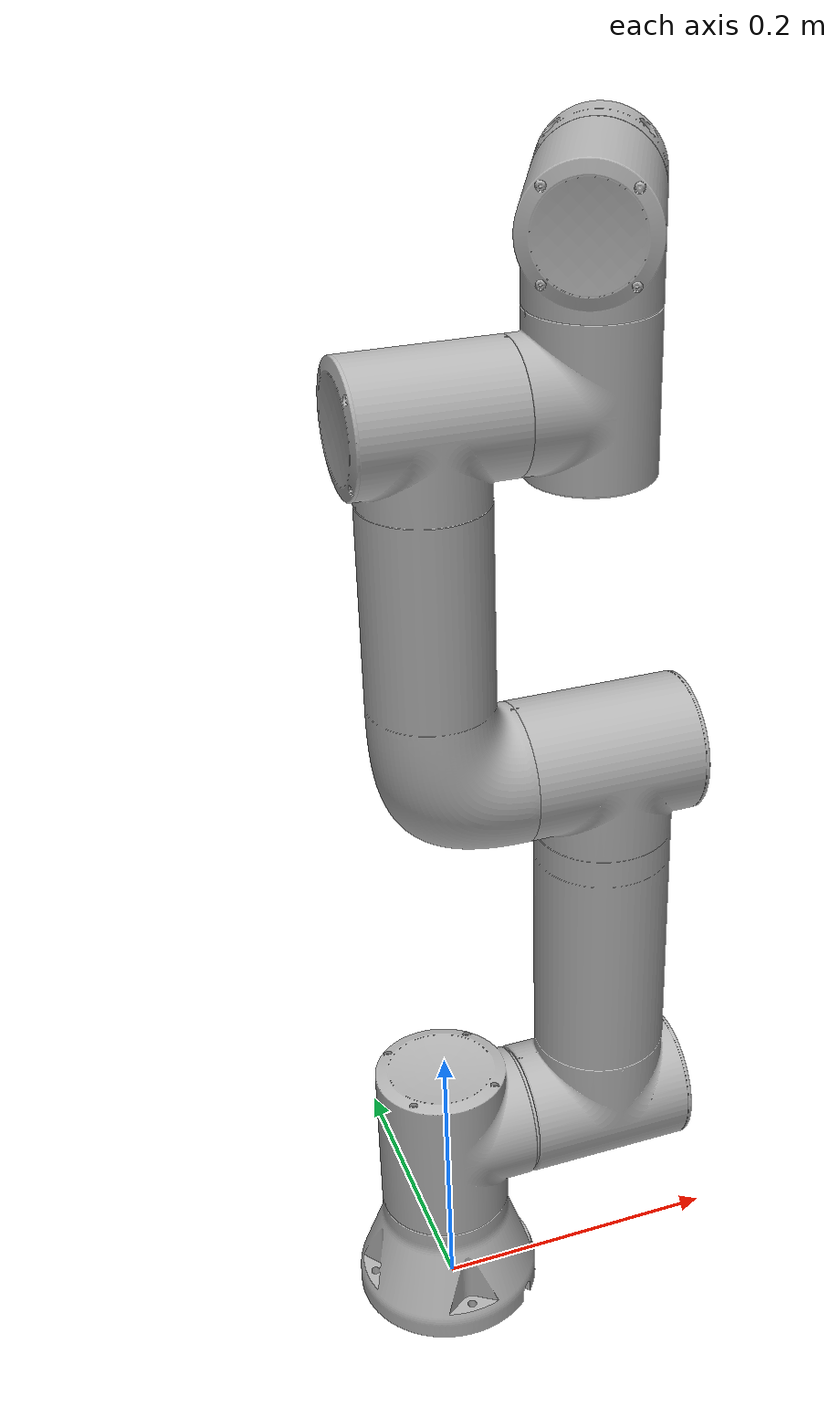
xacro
<?xml version="1.0"?>
<robot xmlns:xacro="http://www.ros.org/wiki/xacro" name="r1d1_arm">
    <xacro:arg name="initial_positions_file" default="initial_positions.yaml" />

    <!-- Import r1d1_arm urdf file -->
    <xacro:include filename="$(find r1d1_arm_description)/urdf/r1d1_arm.xacro" />

    <!-- Import control_xacro -->
    <xacro:include filename="r1d1_arm.ros2_control.xacro" />

    <xacro:r1d1_arm_ros2_control name="FakeSystem" initial_positions_file="$(arg initial_positions_file)"/>

</robot>

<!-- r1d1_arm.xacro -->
<robot name="r1d1_arm" xmlns:xacro="http://www.ros.org/wiki/xacro">

<xacro:include filename="$(find r1d1_arm_description)/urdf/materials.xacro" />
<xacro:include filename="$(find r1d1_arm_description)/urdf/r1d1_arm.trans" />
<xacro:include filename="$(find r1d1_arm_description)/urdf/r1d1_arm.gazebo" />
<link name="base_link">
  <inertial>
    <origin xyz="-0.0032892405595757253 0.0008054821122333955 0.0326965395387193" rpy="0 0 0"/>
    <mass value="0.7839307650159778"/>
    <inertia ixx="0.001385" iyy="0.001385" izz="0.001977" ixy="-1.1e-05" iyz="1.1e-05" ixz="-1e-05"/>
  </inertial>
  <visual>
    <origin xyz="0 0 0" rpy="0 0 0"/>
    <geometry>
      <mesh filename="file://$(find r1d1_arm_description)/meshes/base_link.stl" scale="0.001 0.001 0.001"/>
    </geometry>
    <material name="silver"/>
  </visual>
  <collision>
    <origin xyz="0 0 0" rpy="0 0 0"/>
    <geometry>
      <mesh filename="file://$(find r1d1_arm_description)/meshes/base_link.stl" scale="0.001 0.001 0.001"/>
    </geometry>
  </collision>
</link>

<link name="shoulder_Link_1">
  <inertial>
    <origin xyz="0.002444202112778739 4.606711100011167e-06 0.05859659888105938" rpy="0 0 0"/>
    <mass value="2.0994829095204555"/>
    <inertia ixx="0.003406" iyy="0.003487" izz="0.002292" ixy="-0.0" iyz="-0.0" ixz="-3.6e-05"/>
  </inertial>
  <visual>
    <origin xyz="0.002838 -0.000315 -0.076169" rpy="0 0 0"/>
    <geometry>
      <mesh filename="file://$(find r1d1_arm_description)/meshes/shoulder_Link_1.stl" scale="0.001 0.001 0.001"/>
    </geometry>
    <material name="silver"/>
  </visual>
  <collision>
    <origin xyz="0.002838 -0.000315 -0.076169" rpy="0 0 0"/>
    <geometry>
      <mesh filename="file://$(find r1d1_arm_description)/meshes/shoulder_Link_1.stl" scale="0.001 0.001 0.001"/>
    </geometry>
  </collision>
</link>

<link name="upperarm_Link_1">
  <inertial>
    <origin xyz="0.06170357890518546 0.00011276439712407571 0.14000144050923868" rpy="0 0 0"/>
    <mass value="7.489930890438433"/>
    <inertia ixx="0.097327" iyy="0.099971" izz="0.010418" ixy="-5e-06" iyz="-0.0" ixz="0.0"/>
  </inertial>
  <visual>
    <origin xyz="-0.049874 -0.000411 -0.140169" rpy="0 0 0"/>
    <geometry>
      <mesh filename="file://$(find r1d1_arm_description)/meshes/upperarm_Link_1.stl" scale="0.001 0.001 0.001"/>
    </geometry>
    <material name="silver"/>
  </visual>
  <collision>
    <origin xyz="-0.049874 -0.000411 -0.140169" rpy="0 0 0"/>
    <geometry>
      <mesh filename="file://$(find r1d1_arm_description)/meshes/upperarm_Link_1.stl" scale="0.001 0.001 0.001"/>
    </geometry>
  </collision>
</link>

<link name="wrist1_Link_1">
  <inertial>
    <origin xyz="0.041221030830676735 7.524687937618738e-05 0.004360834037367312" rpy="0 0 0"/>
    <mass value="1.5661727934578047"/>
    <inertia ixx="0.001986" iyy="0.00209" izz="0.001431" ixy="-0.0" iyz="-0.0" ixz="-2.6e-05"/>
  </inertial>
  <visual>
    <origin xyz="-0.056874 -0.000424 -0.660179" rpy="0 0 0"/>
    <geometry>
      <mesh filename="file://$(find r1d1_arm_description)/meshes/wrist1_Link_1.stl" scale="0.001 0.001 0.001"/>
    </geometry>
    <material name="silver"/>
  </visual>
  <collision>
    <origin xyz="-0.056874 -0.000424 -0.660179" rpy="0 0 0"/>
    <geometry>
      <mesh filename="file://$(find r1d1_arm_description)/meshes/wrist1_Link_1.stl" scale="0.001 0.001 0.001"/>
    </geometry>
  </collision>
</link>

<link name="wrist2_Link_1">
  <inertial>
    <origin xyz="0.0018357408011129284 0.003955631683063558 0.041220918552474894" rpy="0 0 0"/>
    <mass value="1.5661775922744299"/>
    <inertia ixx="0.001973" iyy="0.001548" izz="0.001986" ixy="-0.000251" iyz="-2.3e-05" ixz="-1.1e-05"/>
  </inertial>
  <visual>
    <origin xyz="-0.101874 -0.000506 -0.717179" rpy="0 0 0"/>
    <geometry>
      <mesh filename="file://$(find r1d1_arm_description)/meshes/wrist2_Link_1.stl" scale="0.001 0.001 0.001"/>
    </geometry>
    <material name="silver"/>
  </visual>
  <collision>
    <origin xyz="-0.101874 -0.000506 -0.717179" rpy="0 0 0"/>
    <geometry>
      <mesh filename="file://$(find r1d1_arm_description)/meshes/wrist2_Link_1.stl" scale="0.001 0.001 0.001"/>
    </geometry>
  </collision>
</link>

<link name="wrist3_Link_1">
  <inertial>
    <origin xyz="0.008299147728004164 0.0177772418279463 -6.263837265285677e-05" rpy="0 0 0"/>
    <mass value="1.5664115132263388"/>
    <inertia ixx="0.000909" iyy="0.001169" izz="0.000839" ixy="0.000153" iyz="-1e-06" ixz="1e-06"/>
  </inertial>
  <visual>
    <origin xyz="-0.125869 -0.052209 -0.762179" rpy="0 0 0"/>
    <geometry>
      <mesh filename="file://$(find r1d1_arm_description)/meshes/wrist3_Link_1.stl" scale="0.001 0.001 0.001"/>
    </geometry>
    <material name="silver"/>
  </visual>
  <collision>
    <origin xyz="-0.125869 -0.052209 -0.762179" rpy="0 0 0"/>
    <geometry>
      <mesh filename="file://$(find r1d1_arm_description)/meshes/wrist3_Link_1.stl" scale="0.001 0.001 0.001"/>
    </geometry>
  </collision>
</link>

<link name="forearm_Link_1">
  <inertial>
    <origin xyz="-0.045494979236257185 -8.250912195243961e-05 0.1282988422809649" rpy="0 0 0"/>
    <mass value="4.877533073312037"/>
    <inertia ixx="0.044713" iyy="0.045622" izz="0.005035" ixy="-2e-06" iyz="3e-06" ixz="0.00147"/>
  </inertial>
  <visual>
    <origin xyz="-0.049874 -0.000411 -0.420169" rpy="0 0 0"/>
    <geometry>
      <mesh filename="file://$(find r1d1_arm_description)/meshes/forearm_Link_1.stl" scale="0.001 0.001 0.001"/>
    </geometry>
    <material name="silver"/>
  </visual>
  <collision>
    <origin xyz="-0.049874 -0.000411 -0.420169" rpy="0 0 0"/>
    <geometry>
      <mesh filename="file://$(find r1d1_arm_description)/meshes/forearm_Link_1.stl" scale="0.001 0.001 0.001"/>
    </geometry>
  </collision>
</link>

<joint name="Revolute 1" type="revolute">
  <origin xyz="-0.002838 0.000315 0.076169" rpy="0 0 0"/>
  <parent link="base_link"/>
  <child link="shoulder_Link_1"/>
  <axis xyz="-0.0 0.0 1.0"/>
  <limit upper="3.054326" lower="-3.054326" effort="100" velocity="100"/>
</joint>

<joint name="Revolute 2" type="revolute">
  <origin xyz="0.052712 9.6e-05 0.064" rpy="0 0 0"/>
  <parent link="shoulder_Link_1"/>
  <child link="upperarm_Link_1"/>
  <axis xyz="0.999998 0.001823 0.0"/>
  <limit upper="3.054326" lower="-3.054326" effort="100" velocity="100"/>
</joint>

<joint name="Revolute 4" type="revolute">
  <origin xyz="0.007 1.3e-05 0.24001" rpy="0 0 0"/>
  <parent link="forearm_Link_1"/>
  <child link="wrist1_Link_1"/>
  <axis xyz="0.999998 0.001823 0.0"/>
  <limit upper="3.054326" lower="-3.054326" effort="100" velocity="100"/>
</joint>

<joint name="Revolute 5" type="revolute">
  <origin xyz="0.045 8.2e-05 0.057" rpy="0 0 0"/>
  <parent link="wrist1_Link_1"/>
  <child link="wrist2_Link_1"/>
  <axis xyz="-0.0 0.0 1.0"/>
  <limit upper="1.48353" lower="-4.625123" effort="100" velocity="100"/>
</joint>

<joint name="Revolute 6" type="revolute">
  <origin xyz="0.023995 0.051703 0.045" rpy="0 0 0"/>
  <parent link="wrist2_Link_1"/>
  <child link="wrist3_Link_1"/>
  <axis xyz="0.420966 0.907077 -0.0"/>
  <limit upper="3.054326" lower="-3.054326" effort="100" velocity="100"/>
</joint>

<joint name="Revolute 3" type="revolute">
  <origin xyz="0.0 0.0 0.28" rpy="0 0 0"/>
  <parent link="upperarm_Link_1"/>
  <child link="forearm_Link_1"/>
  <axis xyz="-0.999998 -0.001823 -0.0"/>
  <limit upper="2.827433" lower="-2.827433" effort="100" velocity="100"/>
</joint>

</robot>

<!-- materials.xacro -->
<robot name="r1d1_arm" xmlns:xacro="http://www.ros.org/wiki/xacro" >

<material name="silver">
  <color rgba="0.700 0.700 0.700 1.000"/>
</material>

</robot>

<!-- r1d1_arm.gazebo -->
<robot name="r1d1_arm" xmlns:xacro="http://www.ros.org/wiki/xacro" >

<xacro:property name="body_color" value="Gazebo/Silver" />

<gazebo>
  <plugin name="control" filename="libgazebo_ros_control.so"/>
</gazebo>
<gazebo reference="base_link">
  <material>${body_color}</material>
  <mu1>0.2</mu1>
  <mu2>0.2</mu2>
  <self_collide>true</self_collide>
  <gravity>true</gravity>
</gazebo>

<gazebo reference="shoulder_Link_1">
  <material>${body_color}</material>
  <mu1>0.2</mu1>
  <mu2>0.2</mu2>
  <self_collide>true</self_collide>
</gazebo>

<gazebo reference="upperarm_Link_1">
  <material>${body_color}</material>
  <mu1>0.2</mu1>
  <mu2>0.2</mu2>
  <self_collide>true</self_collide>
</gazebo>

<gazebo reference="wrist1_Link_1">
  <material>${body_color}</material>
  <mu1>0.2</mu1>
  <mu2>0.2</mu2>
  <self_collide>true</self_collide>
</gazebo>

<gazebo reference="wrist2_Link_1">
  <material>${body_color}</material>
  <mu1>0.2</mu1>
  <mu2>0.2</mu2>
  <self_collide>true</self_collide>
</gazebo>

<gazebo reference="wrist3_Link_1">
  <material>${body_color}</material>
  <mu1>0.2</mu1>
  <mu2>0.2</mu2>
  <self_collide>true</self_collide>
</gazebo>

<gazebo reference="forearm_Link_1">
  <material>${body_color}</material>
  <mu1>0.2</mu1>
  <mu2>0.2</mu2>
  <self_collide>true</self_collide>
</gazebo>

</robot>
